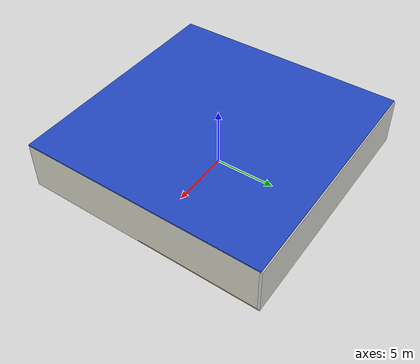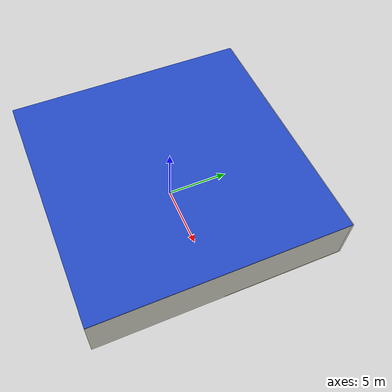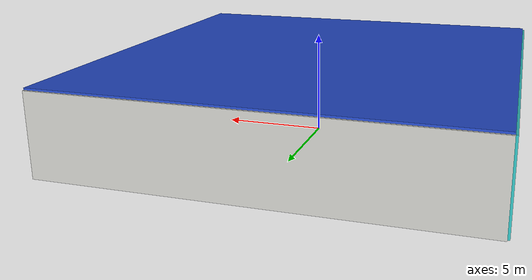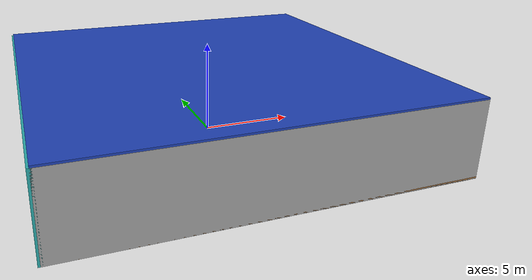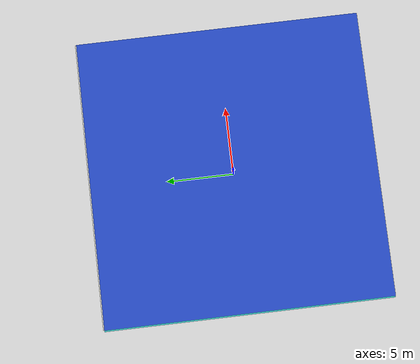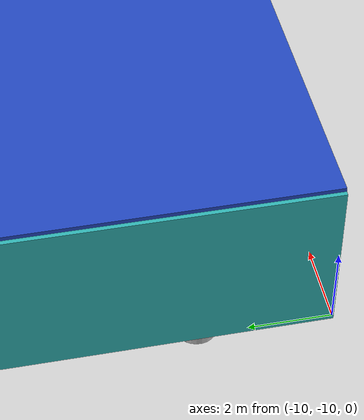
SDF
<sdf version="1.4">
 <world name="default">
  <physics type="ode">
   <max_step_size>0.001</max_step_size>
   <real_time_factor>1</real_time_factor>
   <real_time_update_rate>1000</real_time_update_rate>
   <gravity>0 0 -9.8</gravity>
  </physics>
  <scene><ambient>0.4 0.4 0.4 1</ambient><background>0.7 0.7 0.7 1</background><shadows>1</shadows></scene>
  <model name="Surrounding">
   <static>1</static>
   <link name="Ceiling">
    <collision name="Ceiling_Collision"><geometry><box><size>20 20 0.1</size></box></geometry></collision>
    <visual name="Ceiling_Visual">
     <geometry><box><size>20 20 0.1</size></box></geometry>
     <material>
      <script><uri>file://media/materials/scripts/gazebo.material</uri><name>Gazebo/Blue</name></script>
     </material>
    </visual>
    <pose>0 0 4.05 0 0 0</pose>
   </link>
   <link name="Wall_South">
    <collision name="Wall_South_Collision">
     <geometry><box><size>20 0 4</size></box></geometry>
     <pose>0 0 2 0 -0 0</pose>
    </collision>
    <visual name="Wall_South_Visual">
     <pose>0 0 2 0 -0 0</pose>
     <geometry><box><size>20 0 4</size></box></geometry>
     <material>
      <script><uri>file://media/materials/scripts/gazebo.material</uri><name>Gazebo/LightOff</name></script>
     </material>
    </visual>
    <velocity_decay><linear>0</linear><angular>0</angular></velocity_decay>
    <pose>0 -10 0 0 -0 0</pose>
   </link>
   <link name="Wall_East">
    <collision name="Wall_21_Collision">
     <geometry><box><size>20 0 4</size></box></geometry>
     <pose>0 0 2 0 -0 0</pose>
    </collision>
    <visual name="Wall_21_Visual">
     <pose>0 0 2 0 -0 0</pose>
     <geometry><box><size>20 0 4</size></box></geometry>
     <material>
      <script><uri>file://media/materials/scripts/gazebo.material</uri><name>Gazebo/PaintedWall</name></script>
     </material>
    </visual>
    <velocity_decay><linear>0</linear><angular>0</angular></velocity_decay>
    <pose>10 0 0 0 -0 1.5708</pose>
   </link>
   <link name="Wall_North">
    <collision name="Wall_22_Collision">
     <geometry><box><size>20 0.2 4</size></box></geometry>
     <pose>0 0 2 0 -0 0</pose>
    </collision>
    <visual name="Wall_22_Visual">
     <pose>0 0 2 0 -0 0</pose>
     <geometry><box><size>20 0.2 4</size></box></geometry>
     <material>
      <script><uri>file://media/materials/scripts/gazebo.material</uri><name>Gazebo/CeilingTiled</name></script>
     </material>
    </visual>
    <velocity_decay><linear>0</linear><angular>0</angular></velocity_decay>
    <pose>0 10 0 0 -0 0</pose>
   </link>
   <link name="Wall_West">
    <collision name="Wall_23_Collision">
     <geometry><box><size>20 0.2 4</size></box></geometry>
     <pose>0 0 2 0 -0 0</pose>
    </collision>
    <visual name="Wall_23_Visual">
     <pose>0 0 2 0 -0 0</pose>
     <geometry><box><size>20 0.2 4</size></box></geometry>
     <material>
      <script>
       <uri>file://media/materials/scripts/gazebo.material</uri>
       <name>Gazebo/TurquoiseGlowOutline</name>
      </script>
     </material>
    </visual>
    <velocity_decay><linear>0</linear><angular>0</angular></velocity_decay>
    <pose>-10 0 0 0 0 -1.5708</pose>
   </link>
   <link name="Ground_link">
    <collision name="collision">
     <pose>0 0 .05 0 -0 0</pose>
     <geometry><box><size>20 20 0.1</size></box></geometry>
    </collision>
    <visual name="visual">
     <pose>0 0 .05 0 -0 0</pose>
     <geometry><box><size>20 20 0.1</size></box></geometry>
     <material>
      <script><uri>file://media/materials/scripts/gazebo.material</uri><name>Gazebo/WoodFloor</name></script>
     </material>
    </visual>
   </link>
   <static>1</static>
  </model>
  <spherical_coordinates>
   <surface_model>EARTH_WGS84</surface_model>
   <latitude_deg>0</latitude_deg>
   <longitude_deg>0</longitude_deg>
   <elevation>0</elevation>
   <heading_deg>0</heading_deg>
  </spherical_coordinates>
  <light name="lightball_0" type="diffuse">
   <diffuse>0.8 0.8 0.8 1</diffuse>
   <specular>0.2 0.2 0.2 1</specular>
   <attenuation>
    <range>100</range>
    <constant>0.7</constant>
    <linear>0.01</linear>
    <quadratic>0.001</quadratic>
   </attenuation>
   <direction>-0.5 0.1 -0.9</direction>
   <pose>4.57103313751 3.80788207126 1.63090189989 0 0 0</pose>
  </light>
  <light name="lightball_1" type="diffuse">
   <diffuse>0.8 0.8 0.8 1</diffuse>
   <specular>0.2 0.2 0.2 1</specular>
   <attenuation>
    <range>100</range>
    <constant>0.7</constant>
    <linear>0.01</linear>
    <quadratic>0.001</quadratic>
   </attenuation>
   <direction>-0.5 0.1 -0.9</direction>
   <pose>-8.95247784463 2.32312034939 3.68799084357 0 0 0</pose>
  </light>
  <light name="lightball_2" type="diffuse">
   <diffuse>0.8 0.8 0.8 1</diffuse>
   <specular>0.2 0.2 0.2 1</specular>
   <attenuation>
    <range>100</range>
    <constant>0.7</constant>
    <linear>0.01</linear>
    <quadratic>0.001</quadratic>
   </attenuation>
   <direction>-0.5 0.1 -0.9</direction>
   <pose>-6.91773346624 -6.17615236693 2.34987092128 0 0 0</pose>
  </light>
  <light name="lightball_3" type="diffuse">
   <diffuse>0.8 0.8 0.8 1</diffuse>
   <specular>0.2 0.2 0.2 1</specular>
   <attenuation>
    <range>100</range>
    <constant>0.7</constant>
    <linear>0.01</linear>
    <quadratic>0.001</quadratic>
   </attenuation>
   <direction>-0.5 0.1 -0.9</direction>
   <pose>-5.4921919745 8.95902201486 2.8356909717 0 0 0</pose>
  </light>
  <light name="lightball_4" type="diffuse">
   <diffuse>0.8 0.8 0.8 1</diffuse>
   <specular>0.2 0.2 0.2 1</specular>
   <attenuation>
    <range>100</range>
    <constant>0.7</constant>
    <linear>0.01</linear>
    <quadratic>0.001</quadratic>
   </attenuation>
   <direction>-0.5 0.1 -0.9</direction>
   <pose>-4.69112253572 8.01282375291 3.62840886394 0 0 0</pose>
  </light>
  <light name="lightball_5" type="diffuse">
   <diffuse>0.8 0.8 0.8 1</diffuse>
   <specular>0.2 0.2 0.2 1</specular>
   <attenuation>
    <range>100</range>
    <constant>0.7</constant>
    <linear>0.01</linear>
    <quadratic>0.001</quadratic>
   </attenuation>
   <direction>-0.5 0.1 -0.9</direction>
   <pose>6.5523839726 -0.784870582491 1.24672697614 0 0 0</pose>
  </light>
  <light name="lightball_6" type="diffuse">
   <diffuse>0.8 0.8 0.8 1</diffuse>
   <specular>0.2 0.2 0.2 1</specular>
   <attenuation>
    <range>100</range>
    <constant>0.7</constant>
    <linear>0.01</linear>
    <quadratic>0.001</quadratic>
   </attenuation>
   <direction>-0.5 0.1 -0.9</direction>
   <pose>-3.10495111838 -8.74711402355 3.03476030896 0 0 0</pose>
  </light>
  <include>
   <uri>model://textured_shapes</uri>
   <pose>-7.8707475149 -7.19556497396 0 0 0 1.39398191289</pose>
  </include>
  <include>
   <uri>model://construction_cone</uri>
   <pose>-7.9016768107 -1.69917819097 0 0 0 0.298257499799</pose>
  </include>
  <include><uri>model://table</uri><pose>1.63764432982 -5.1135051914 0 0 0 0.393331377354</pose></include>
  <include><uri>model://cabinet</uri><pose>5.04438723941 -4.07740223269 0 0 0 1.11702467747</pose></include>
  <include><uri>model://table</uri><pose>3.73745162736 4.24046868566 0 0 0 2.74791784962</pose></include>
  <include><uri>model://cabinet</uri><pose>7.52403905191 -4.34927304154 0 0 0 0.715910289294</pose></include>
  <include><uri>model://table</uri><pose>6.88250234947 1.82939332545 0 0 0 1.20690627657</pose></include>
 </world>
</sdf>

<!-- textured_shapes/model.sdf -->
<sdf version="1.6">
  <model name="textured_shapes">
    <pose>0 0 0.5 0 0 0</pose>
    <link name="box">
      <pose>0 -1.5 0 0 0 0</pose>
      <collision name="collision">
        <geometry>
          <box>
            <size>1 1 1</size>
          </box>
        </geometry>
      </collision>
      <visual name="visual">
        <geometry>
          <box>
            <size>1 1 1</size>
          </box>
        </geometry>
        <material>
          <script>
            <uri>model://../model_source/models/textured_shapes/materials/scripts</uri>
            <uri>model://../model_source/models/textured_shapes/materials/textures</uri>
            <name>TexturedShape/Squares</name>
          </script>
        </material>
      </visual>
    </link>
    <link name="sphere">
      <collision name="collision">
        <geometry>
          <sphere>
            <radius>0.5</radius>
          </sphere>
        </geometry>
      </collision>
      <visual name="visual">
        <geometry>
          <sphere>
            <radius>0.5</radius>
          </sphere>
        </geometry>
        <material>
          <script>
            <uri>model://../model_source/models/textured_shapes/materials/scripts</uri>
            <uri>model://../model_source/models/textured_shapes/materials/textures</uri>
            <name>TexturedShape/Squares</name>
          </script>
        </material>
      </visual>
    </link>
    <link name="cylinder">
      <pose>0 1.5 0 0 0 0</pose>
      <collision name="collision">
        <geometry>
          <cylinder>
            <radius>0.5</radius>
            <length>1</length>
          </cylinder>
        </geometry>
      </collision>
      <visual name="visual">
        <geometry>
          <cylinder>
            <radius>0.5</radius>
            <length>1</length>
          </cylinder>
        </geometry>
        <material>
          <script>
            <uri>model://../model_source/models/textured_shapes/materials/scripts</uri>
            <uri>model://../model_source/models/textured_shapes/materials/textures</uri>
            <name>TexturedShape/Squares</name>
          </script>
        </material>
      </visual>
    </link>
  </model>
</sdf>

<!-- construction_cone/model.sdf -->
<sdf version="1.5">
  <model name="Construction Cone">
    <link name="link">
      <collision name="collision">
        <geometry>
          <mesh>
            <scale>10 10 10</scale>
            <uri>file://isr-testbed/construction_cone/meshes/construction_cone.dae</uri>
          </mesh>
        </geometry>
      </collision>
      <visual name="visual">
        <geometry>
          <mesh>
            <scale>10 10 10</scale>
            <uri>file://isr-testbed/construction_cone/meshes/construction_cone.dae</uri>
          </mesh>
        </geometry>
      </visual>
    </link>
  </model>
</sdf>

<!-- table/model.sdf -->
<sdf version="1.5">
  <model name="table">
    <static>true</static>
    <link name="link">
      <collision name="surface">
        <pose>0 0 1.0 0 0 0</pose>
        <geometry>
          <box>
            <size>1.5 0.8 0.03</size>
          </box>
        </geometry>
        <surface>
          <friction>
            <ode>
              <mu>0.6</mu>
              <mu2>0.6</mu2>
            </ode>
          </friction>
        </surface>
      </collision>
      <visual name="visual1">
        <pose>0 0 1.0 0 0 0</pose>
        <geometry>
          <box>
            <size>1.5 0.8 0.03</size>
          </box>
        </geometry>
        <material>
          <script>
            <uri>model://media/materials/scripts/gazebo.material</uri>
            <name>Gazebo/Wood</name>
          </script>
        </material>
      </visual>
      <collision name="front_left_leg">
        <pose>0.68 0.38 0.5 0 0 0</pose>
        <geometry>
          <cylinder>
            <radius>0.02</radius>
            <length>1.0</length>
          </cylinder>
        </geometry>
      </collision>
      <visual name="front_left_leg">
        <pose>0.68 0.38 0.5 0 0 0</pose>
        <geometry>
          <cylinder>
            <radius>0.02</radius>
            <length>1.0</length>
          </cylinder>
        </geometry>
        <material>
          <script>
            <uri>model://media/materials/scripts/gazebo.material</uri>
            <name>Gazebo/Grey</name>
          </script>
        </material>
      </visual>
      <collision name="front_right_leg">
        <pose>0.68 -0.38 0.5 0 0 0</pose>
        <geometry>
          <cylinder>
            <radius>0.02</radius>
            <length>1.0</length>
          </cylinder>
        </geometry>
      </collision>
      <visual name="front_right_leg">
        <pose>0.68 -0.38 0.5 0 0 0</pose>
        <geometry>
          <cylinder>
            <radius>0.02</radius>
            <length>1.0</length>
          </cylinder>
        </geometry>
        <material>
          <script>
            <uri>model://media/materials/scripts/gazebo.material</uri>
            <name>Gazebo/Grey</name>
          </script>
        </material>
      </visual>
      <collision name="back_right_leg">
        <pose>-0.68 -0.38 0.5 0 0 0</pose>
        <geometry>
          <cylinder>
            <radius>0.02</radius>
            <length>1.0</length>
          </cylinder>
        </geometry>
      </collision>
      <visual name="back_right_leg">
        <pose>-0.68 -0.38 0.5 0 0 0</pose>
        <geometry>
          <cylinder>
            <radius>0.02</radius>
            <length>1.0</length>
          </cylinder>
        </geometry>
        <material>
          <script>
            <uri>model://media/materials/scripts/gazebo.material</uri>
            <name>Gazebo/Grey</name>
          </script>
        </material>
      </visual>
      <collision name="back_left_leg">
        <pose>-0.68 0.38 0.5 0 0 0</pose>
        <geometry>
          <cylinder>
            <radius>0.02</radius>
            <length>1.0</length>
          </cylinder>
        </geometry>
      </collision>
      <visual name="back_left_leg">
        <pose>-0.68 0.38 0.5 0 0 0</pose>
        <geometry>
          <cylinder>
            <radius>0.02</radius>
            <length>1.0</length>
          </cylinder>
        </geometry>
        <material>
          <script>
            <uri>model://media/materials/scripts/gazebo.material</uri>
            <name>Gazebo/Grey</name>
          </script>
        </material>
      </visual>
    </link>
  </model>
</sdf>

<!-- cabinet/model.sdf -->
<sdf version="1.5">
  <model name="cabinet">
    <static>true</static>
    <link name="cabinet_bottom_plate">
      <inertial>
        <pose>0 0 -1 0 0 0</pose>
        <inertia>
          <ixx>2.050000</ixx>
          <ixy>0</ixy>
          <ixz>0</ixz>
          <iyy>2.050000</iyy>
          <iyz>0</iyz>
          <izz>2.050000</izz>
        </inertia>
        <mass>25.000000</mass>
      </inertial>
      <collision name="cabinet_bottom_plate_geom">
        <pose>0 0 0.010000 0 0 0</pose>
        <geometry>
          <box>
            <size>0.450000 0.450000 0.020000</size>
          </box>
        </geometry>
      </collision>
      <visual name="cabinet_bottom_plate_geom_visual">
        <pose>0 0 0.010000 0 0 0</pose>
        <geometry>
          <box>
            <size>0.450000 0.450000 0.020000</size>
          </box>
        </geometry>
        <material>
          <script>
            <uri>model://media/materials/scripts/gazebo.material</uri>
            <name>Gazebo/Wood</name>
          </script>
        </material>
      </visual>
      <collision name="cabinet_bottom_plate_geom_cabinet_back_plate">
        <pose>0.235000 0 0.510000 0 0 0</pose>
        <geometry>
          <box>
            <size>0.020000 0.450000 1.020000</size>
          </box>
        </geometry>
      </collision>
      <visual name="cabinet_bottom_plate_geom_cabinet_back_plate_visual">
        <pose>0.235000 0 0.510000 0 0 0</pose>
        <geometry>
          <box>
            <size>0.020000 0.450000 1.020000</size>
          </box>
        </geometry>
        <material>
          <script>
            <uri>model://media/materials/scripts/gazebo.material</uri>
            <name>Gazebo/Wood</name>
          </script>
        </material>
      </visual>
      <collision name="cabinet_bottom_plate_geom_cabinet_left_plate">
        <pose>0 0.235000 0.510000 0 0 0</pose>
        <geometry>
          <box>
            <size>0.450000 0.020000 1.020000</size>
          </box>
        </geometry>
      </collision>
      <visual name="cabinet_bottom_plate_geom_cabinet_left_plate_visual">
        <pose>0 0.235000 0.510000 0 0 0</pose>
        <geometry>
          <box>
            <size>0.450000 0.020000 1.020000</size>
          </box>
        </geometry>
        <material>
          <script>
            <uri>model://media/materials/scripts/gazebo.material</uri>
            <name>Gazebo/Wood</name>
          </script>
        </material>
      </visual>
      <collision name="cabinet_bottom_plate_geom_cabinet_middle_plate">
        <pose>0 0 0.510000 0 0 0</pose>
        <geometry>
          <box>
            <size>0.450000 0.450000 0.020000</size>
          </box>
        </geometry>
      </collision>
      <visual name="cabinet_bottom_plate_geom_cabinet_middle_plate_visual">
        <pose>0 0 0.510000 0 0 0</pose>
        <geometry>
          <box>
            <size>0.450000 0.450000 0.020000</size>
          </box>
        </geometry>
        <material>
          <script>
            <uri>model://media/materials/scripts/gazebo.material</uri>
            <name>Gazebo/Wood</name>
          </script>
        </material>
      </visual>
      <collision name="cabinet_bottom_plate_geom_cabinet_right_plate">
        <pose>0 -0.235000 0.510000 0 0 0</pose>
        <geometry>
          <box>
            <size>0.450000 0.020000 1.020000</size>
          </box>
        </geometry>
      </collision>
      <visual name="cabinet_bottom_plate_geom_cabinet_right_plate_visual">
        <pose>0 -0.235000 0.510000 0 0 0</pose>
        <geometry>
          <box>
            <size>0.450000 0.020000 1.020000</size>
          </box>
        </geometry>
        <material>
          <script>
            <uri>model://media/materials/scripts/gazebo.material</uri>
            <name>Gazebo/Wood</name>
          </script>
        </material>
      </visual>
      <collision name="cabinet_bottom_plate_geom_cabinet_top_plate">
        <pose>0 0 1.010000 0 0 0</pose>
        <geometry>
          <box>
            <size>0.450000 0.450000 0.020000</size>
          </box>
        </geometry>
      </collision>
      <visual name="cabinet_bottom_plate_geom_cabinet_top_plate_visual">
        <pose>0 0 1.010000 0 0 0</pose>
        <geometry>
          <box>
            <size>0.450000 0.450000 0.020000</size>
          </box>
        </geometry>
        <material>
          <script>
            <uri>model://media/materials/scripts/gazebo.material</uri>
            <name>Gazebo/Wood</name>
          </script>
        </material>
      </visual>
    </link>
  </model>
</sdf>
